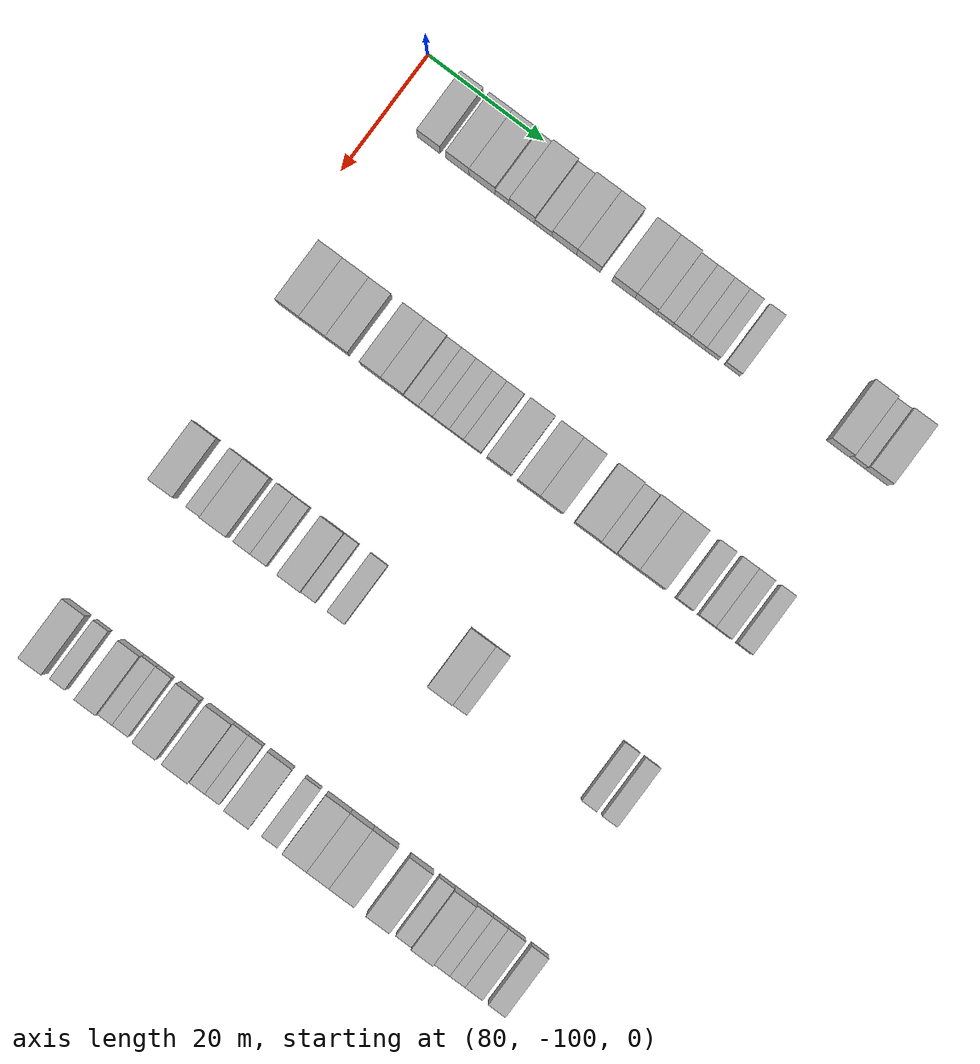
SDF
<sdf version="1.6">
 <world name="default">
  <model name="building_549">
   <static>1</static>
   <pose>85.0000 -92.3695 0 0.000000 0.000000 0.000000</pose>
   <link name="link">
    <pose>0 0 4.50 0 0 0</pose>
    <collision name="collision"><geometry><box><size>10.0000 3.9229 9.0000</size></box></geometry></collision>
    <visual name="visual">
     <cast_shadows>0</cast_shadows>
     <geometry><box><size>10.0000 3.9229 9.0000</size></box></geometry>
     <material>
      <script>
       <uri>model://HANNAS_wall/materials/scripts</uri>
       <uri>model://HANNAS_wall/materials/textures</uri>
       <name>vrc/HANNAS_wall</name>
      </script>
     </material>
    </visual>
   </link>
  </model>
  <model name="building_550">
   <static>1</static>
   <pose>85.0000 -87.4269 0 0.000000 0.000000 0.000000</pose>
   <link name="link">
    <pose>0 0 4.50 0 0 0</pose>
    <collision name="collision"><geometry><box><size>10.0000 3.9623 9.0000</size></box></geometry></collision>
    <visual name="visual">
     <cast_shadows>0</cast_shadows>
     <geometry><box><size>10.0000 3.9623 9.0000</size></box></geometry>
     <material>
      <script>
       <uri>model://HANNAS_wall/materials/scripts</uri>
       <uri>model://HANNAS_wall/materials/textures</uri>
       <name>vrc/HANNAS_wall</name>
      </script>
     </material>
    </visual>
   </link>
  </model>
  <model name="building_551">
   <static>1</static>
   <pose>85.0000 -83.2422 0 0.000000 0.000000 0.000000</pose>
   <link name="link">
    <pose>0 0 4.50 0 0 0</pose>
    <collision name="collision"><geometry><box><size>10.0000 4.4071 9.0000</size></box></geometry></collision>
    <visual name="visual">
     <cast_shadows>0</cast_shadows>
     <geometry><box><size>10.0000 4.4071 9.0000</size></box></geometry>
     <material>
      <script>
       <uri>model://HANNAS_wall/materials/scripts</uri>
       <uri>model://HANNAS_wall/materials/textures</uri>
       <name>vrc/HANNAS_wall</name>
      </script>
     </material>
    </visual>
   </link>
  </model>
  <model name="building_552">
   <static>1</static>
   <pose>85.0000 -79.8215 0 0.000000 0.000000 0.000000</pose>
   <link name="link">
    <pose>0 0 3.00 0 0 0</pose>
    <collision name="collision"><geometry><box><size>10.0000 2.4341 6.0000</size></box></geometry></collision>
    <visual name="visual">
     <cast_shadows>0</cast_shadows>
     <geometry><box><size>10.0000 2.4341 6.0000</size></box></geometry>
     <material>
      <script>
       <uri>model://HANNAS_wall/materials/scripts</uri>
       <uri>model://HANNAS_wall/materials/textures</uri>
       <name>vrc/HANNAS_wall</name>
      </script>
     </material>
    </visual>
   </link>
  </model>
  <model name="building_553">
   <static>1</static>
   <pose>85.0000 -76.4082 0 0.000000 0.000000 0.000000</pose>
   <link name="link">
    <pose>0 0 4.50 0 0 0</pose>
    <collision name="collision"><geometry><box><size>10.0000 4.3925 9.0000</size></box></geometry></collision>
    <visual name="visual">
     <cast_shadows>0</cast_shadows>
     <geometry><box><size>10.0000 4.3925 9.0000</size></box></geometry>
     <material>
      <script>
       <uri>model://HANNAS_wall/materials/scripts</uri>
       <uri>model://HANNAS_wall/materials/textures</uri>
       <name>vrc/HANNAS_wall</name>
      </script>
     </material>
    </visual>
   </link>
  </model>
  <model name="building_554">
   <static>1</static>
   <pose>85.0000 -72.7127 0 0.000000 0.000000 0.000000</pose>
   <link name="link">
    <pose>0 0 3.00 0 0 0</pose>
    <collision name="collision"><geometry><box><size>10.0000 2.9986 6.0000</size></box></geometry></collision>
    <visual name="visual">
     <cast_shadows>0</cast_shadows>
     <geometry><box><size>10.0000 2.9986 6.0000</size></box></geometry>
     <material>
      <script>
       <uri>model://HANNAS_wall/materials/scripts</uri>
       <uri>model://HANNAS_wall/materials/textures</uri>
       <name>vrc/HANNAS_wall</name>
      </script>
     </material>
    </visual>
   </link>
  </model>
  <model name="building_555">
   <static>1</static>
   <pose>85.0000 -69.0909 0 0.000000 0.000000 0.000000</pose>
   <link name="link">
    <pose>0 0 4.50 0 0 0</pose>
    <collision name="collision"><geometry><box><size>10.0000 4.2450 9.0000</size></box></geometry></collision>
    <visual name="visual">
     <cast_shadows>0</cast_shadows>
     <geometry><box><size>10.0000 4.2450 9.0000</size></box></geometry>
     <material>
      <script>
       <uri>model://HANNAS_wall/materials/scripts</uri>
       <uri>model://HANNAS_wall/materials/textures</uri>
       <name>vrc/HANNAS_wall</name>
      </script>
     </material>
    </visual>
   </link>
  </model>
  <model name="building_556">
   <static>1</static>
   <pose>85.0000 -64.9209 0 0.000000 0.000000 0.000000</pose>
   <link name="link">
    <pose>0 0 4.50 0 0 0</pose>
    <collision name="collision"><geometry><box><size>10.0000 4.0949 9.0000</size></box></geometry></collision>
    <visual name="visual">
     <cast_shadows>0</cast_shadows>
     <geometry><box><size>10.0000 4.0949 9.0000</size></box></geometry>
     <material>
      <script>
       <uri>model://HANNAS_wall/materials/scripts</uri>
       <uri>model://HANNAS_wall/materials/textures</uri>
       <name>vrc/HANNAS_wall</name>
      </script>
     </material>
    </visual>
   </link>
  </model>
  <model name="building_557">
   <static>1</static>
   <pose>85.0000 -58.8725 0 0.000000 0.000000 0.000000</pose>
   <link name="link">
    <pose>0 0 4.50 0 0 0</pose>
    <collision name="collision"><geometry><box><size>10.0000 4.0019 9.0000</size></box></geometry></collision>
    <visual name="visual">
     <cast_shadows>0</cast_shadows>
     <geometry><box><size>10.0000 4.0019 9.0000</size></box></geometry>
     <material>
      <script>
       <uri>model://HANNAS_wall/materials/scripts</uri>
       <uri>model://HANNAS_wall/materials/textures</uri>
       <name>vrc/HANNAS_wall</name>
      </script>
     </material>
    </visual>
   </link>
  </model>
  <model name="building_558">
   <static>1</static>
   <pose>85.0000 -55.0321 0 0.000000 0.000000 0.000000</pose>
   <link name="link">
    <pose>0 0 4.50 0 0 0</pose>
    <collision name="collision"><geometry><box><size>10.0000 3.6789 9.0000</size></box></geometry></collision>
    <visual name="visual">
     <cast_shadows>0</cast_shadows>
     <geometry><box><size>10.0000 3.6789 9.0000</size></box></geometry>
     <material>
      <script>
       <uri>model://HANNAS_wall/materials/scripts</uri>
       <uri>model://HANNAS_wall/materials/textures</uri>
       <name>vrc/HANNAS_wall</name>
      </script>
     </material>
    </visual>
   </link>
  </model>
  <model name="building_559">
   <static>1</static>
   <pose>85.0000 -51.8158 0 0.000000 0.000000 0.000000</pose>
   <link name="link">
    <pose>0 0 3.00 0 0 0</pose>
    <collision name="collision"><geometry><box><size>10.0000 2.7536 6.0000</size></box></geometry></collision>
    <visual name="visual">
     <cast_shadows>0</cast_shadows>
     <geometry><box><size>10.0000 2.7536 6.0000</size></box></geometry>
     <material>
      <script>
       <uri>model://HANNAS_wall/materials/scripts</uri>
       <uri>model://HANNAS_wall/materials/textures</uri>
       <name>vrc/HANNAS_wall</name>
      </script>
     </material>
    </visual>
   </link>
  </model>
  <model name="building_560">
   <static>1</static>
   <pose>85.0000 -48.9514 0 0.000000 0.000000 0.000000</pose>
   <link name="link">
    <pose>0 0 3.00 0 0 0</pose>
    <collision name="collision"><geometry><box><size>10.0000 2.9752 6.0000</size></box></geometry></collision>
    <visual name="visual">
     <cast_shadows>0</cast_shadows>
     <geometry><box><size>10.0000 2.9752 6.0000</size></box></geometry>
     <material>
      <script>
       <uri>model://HANNAS_wall/materials/scripts</uri>
       <uri>model://HANNAS_wall/materials/textures</uri>
       <name>vrc/HANNAS_wall</name>
      </script>
     </material>
    </visual>
   </link>
  </model>
  <model name="building_561">
   <static>1</static>
   <pose>85.0000 -46.1761 0 0.000000 0.000000 0.000000</pose>
   <link name="link">
    <pose>0 0 3.00 0 0 0</pose>
    <collision name="collision"><geometry><box><size>10.0000 2.5754 6.0000</size></box></geometry></collision>
    <visual name="visual">
     <cast_shadows>0</cast_shadows>
     <geometry><box><size>10.0000 2.5754 6.0000</size></box></geometry>
     <material>
      <script>
       <uri>model://HANNAS_wall/materials/scripts</uri>
       <uri>model://HANNAS_wall/materials/textures</uri>
       <name>vrc/HANNAS_wall</name>
      </script>
     </material>
    </visual>
   </link>
  </model>
  <model name="building_562">
   <static>1</static>
   <pose>85.0000 -43.6844 0 0.000000 0.000000 0.000000</pose>
   <link name="link">
    <pose>0 0 3.00 0 0 0</pose>
    <collision name="collision"><geometry><box><size>10.0000 2.4079 6.0000</size></box></geometry></collision>
    <visual name="visual">
     <cast_shadows>0</cast_shadows>
     <geometry><box><size>10.0000 2.4079 6.0000</size></box></geometry>
     <material>
      <script>
       <uri>model://HANNAS_wall/materials/scripts</uri>
       <uri>model://HANNAS_wall/materials/textures</uri>
       <name>vrc/HANNAS_wall</name>
      </script>
     </material>
    </visual>
   </link>
  </model>
  <model name="building_563">
   <static>1</static>
   <pose>85.0000 -40.1378 0 0.000000 0.000000 0.000000</pose>
   <link name="link">
    <pose>0 0 3.00 0 0 0</pose>
    <collision name="collision"><geometry><box><size>10.0000 2.6854 6.0000</size></box></geometry></collision>
    <visual name="visual">
     <cast_shadows>0</cast_shadows>
     <geometry><box><size>10.0000 2.6854 6.0000</size></box></geometry>
     <material>
      <script>
       <uri>model://HANNAS_wall/materials/scripts</uri>
       <uri>model://HANNAS_wall/materials/textures</uri>
       <name>vrc/HANNAS_wall</name>
      </script>
     </material>
    </visual>
   </link>
  </model>
  <model name="building_564">
   <static>1</static>
   <pose>85.0000 -21.9432 0 0.000000 0.000000 0.000000</pose>
   <link name="link">
    <pose>0 0 4.50 0 0 0</pose>
    <collision name="collision"><geometry><box><size>10.0000 3.9012 9.0000</size></box></geometry></collision>
    <visual name="visual">
     <cast_shadows>0</cast_shadows>
     <geometry><box><size>10.0000 3.9012 9.0000</size></box></geometry>
     <material>
      <script>
       <uri>model://HANNAS_wall/materials/scripts</uri>
       <uri>model://HANNAS_wall/materials/textures</uri>
       <name>vrc/HANNAS_wall</name>
      </script>
     </material>
    </visual>
   </link>
  </model>
  <model name="building_565">
   <static>1</static>
   <pose>85.0000 -18.6676 0 0.000000 0.000000 0.000000</pose>
   <link name="link">
    <pose>0 0 3.00 0 0 0</pose>
    <collision name="collision"><geometry><box><size>10.0000 2.6501 6.0000</size></box></geometry></collision>
    <visual name="visual">
     <cast_shadows>0</cast_shadows>
     <geometry><box><size>10.0000 2.6501 6.0000</size></box></geometry>
     <material>
      <script>
       <uri>model://HANNAS_wall/materials/scripts</uri>
       <uri>model://HANNAS_wall/materials/textures</uri>
       <name>vrc/HANNAS_wall</name>
      </script>
     </material>
    </visual>
   </link>
  </model>
  <model name="building_566">
   <static>1</static>
   <pose>85.0000 -15.3752 0 0.000000 0.000000 0.000000</pose>
   <link name="link">
    <pose>0 0 4.50 0 0 0</pose>
    <collision name="collision"><geometry><box><size>10.0000 3.9347 9.0000</size></box></geometry></collision>
    <visual name="visual">
     <cast_shadows>0</cast_shadows>
     <geometry><box><size>10.0000 3.9347 9.0000</size></box></geometry>
     <material>
      <script>
       <uri>model://HANNAS_wall/materials/scripts</uri>
       <uri>model://HANNAS_wall/materials/textures</uri>
       <name>vrc/HANNAS_wall</name>
      </script>
     </material>
    </visual>
   </link>
  </model>
  <model name="building_763">
   <static>1</static>
   <pose>115.0000 -94.0664 0 0.000000 0.000000 0.000000</pose>
   <link name="link">
    <pose>0 0 4.50 0 0 0</pose>
    <collision name="collision"><geometry><box><size>10.0000 4.0373 9.0000</size></box></geometry></collision>
    <visual name="visual">
     <cast_shadows>0</cast_shadows>
     <geometry><box><size>10.0000 4.0373 9.0000</size></box></geometry>
     <material>
      <script>
       <uri>model://HANNAS_wall/materials/scripts</uri>
       <uri>model://HANNAS_wall/materials/textures</uri>
       <name>vrc/HANNAS_wall</name>
      </script>
     </material>
    </visual>
   </link>
  </model>
  <model name="building_764">
   <static>1</static>
   <pose>115.0000 -89.8012 0 0.000000 0.000000 0.000000</pose>
   <link name="link">
    <pose>0 0 4.50 0 0 0</pose>
    <collision name="collision"><geometry><box><size>10.0000 4.4929 9.0000</size></box></geometry></collision>
    <visual name="visual">
     <cast_shadows>0</cast_shadows>
     <geometry><box><size>10.0000 4.4929 9.0000</size></box></geometry>
     <material>
      <script>
       <uri>model://HANNAS_wall/materials/scripts</uri>
       <uri>model://HANNAS_wall/materials/textures</uri>
       <name>vrc/HANNAS_wall</name>
      </script>
     </material>
    </visual>
   </link>
  </model>
  <model name="building_765">
   <static>1</static>
   <pose>115.0000 -85.6684 0 0.000000 0.000000 0.000000</pose>
   <link name="link">
    <pose>0 0 4.50 0 0 0</pose>
    <collision name="collision"><geometry><box><size>10.0000 3.7727 9.0000</size></box></geometry></collision>
    <visual name="visual">
     <cast_shadows>0</cast_shadows>
     <geometry><box><size>10.0000 3.7727 9.0000</size></box></geometry>
     <material>
      <script>
       <uri>model://HANNAS_wall/materials/scripts</uri>
       <uri>model://HANNAS_wall/materials/textures</uri>
       <name>vrc/HANNAS_wall</name>
      </script>
     </material>
    </visual>
   </link>
  </model>
  <model name="building_766">
   <static>1</static>
   <pose>115.0000 -79.9655 0 0.000000 0.000000 0.000000</pose>
   <link name="link">
    <pose>0 0 4.50 0 0 0</pose>
    <collision name="collision"><geometry><box><size>10.0000 3.6332 9.0000</size></box></geometry></collision>
    <visual name="visual">
     <cast_shadows>0</cast_shadows>
     <geometry><box><size>10.0000 3.6332 9.0000</size></box></geometry>
     <material>
      <script>
       <uri>model://HANNAS_wall/materials/scripts</uri>
       <uri>model://HANNAS_wall/materials/textures</uri>
       <name>vrc/HANNAS_wall</name>
      </script>
     </material>
    </visual>
   </link>
  </model>
  <model name="building_767">
   <static>1</static>
   <pose>115.0000 -76.2328 0 0.000000 0.000000 0.000000</pose>
   <link name="link">
    <pose>0 0 4.50 0 0 0</pose>
    <collision name="collision"><geometry><box><size>10.0000 3.8322 9.0000</size></box></geometry></collision>
    <visual name="visual">
     <cast_shadows>0</cast_shadows>
     <geometry><box><size>10.0000 3.8322 9.0000</size></box></geometry>
     <material>
      <script>
       <uri>model://HANNAS_wall/materials/scripts</uri>
       <uri>model://HANNAS_wall/materials/textures</uri>
       <name>vrc/HANNAS_wall</name>
      </script>
     </material>
    </visual>
   </link>
  </model>
  <model name="building_768">
   <static>1</static>
   <pose>115.0000 -73.0733 0 0.000000 0.000000 0.000000</pose>
   <link name="link">
    <pose>0 0 3.00 0 0 0</pose>
    <collision name="collision"><geometry><box><size>10.0000 2.4868 6.0000</size></box></geometry></collision>
    <visual name="visual">
     <cast_shadows>0</cast_shadows>
     <geometry><box><size>10.0000 2.4868 6.0000</size></box></geometry>
     <material>
      <script>
       <uri>model://HANNAS_wall/materials/scripts</uri>
       <uri>model://HANNAS_wall/materials/textures</uri>
       <name>vrc/HANNAS_wall</name>
      </script>
     </material>
    </visual>
   </link>
  </model>
  <model name="building_769">
   <static>1</static>
   <pose>115.0000 -70.5914 0 0.000000 0.000000 0.000000</pose>
   <link name="link">
    <pose>0 0 3.00 0 0 0</pose>
    <collision name="collision"><geometry><box><size>10.0000 2.4769 6.0000</size></box></geometry></collision>
    <visual name="visual">
     <cast_shadows>0</cast_shadows>
     <geometry><box><size>10.0000 2.4769 6.0000</size></box></geometry>
     <material>
      <script>
       <uri>model://HANNAS_wall/materials/scripts</uri>
       <uri>model://HANNAS_wall/materials/textures</uri>
       <name>vrc/HANNAS_wall</name>
      </script>
     </material>
    </visual>
   </link>
  </model>
  <model name="building_770">
   <static>1</static>
   <pose>115.0000 -67.9478 0 0.000000 0.000000 0.000000</pose>
   <link name="link">
    <pose>0 0 3.00 0 0 0</pose>
    <collision name="collision"><geometry><box><size>10.0000 2.8102 6.0000</size></box></geometry></collision>
    <visual name="visual">
     <cast_shadows>0</cast_shadows>
     <geometry><box><size>10.0000 2.8102 6.0000</size></box></geometry>
     <material>
      <script>
       <uri>model://HANNAS_wall/materials/scripts</uri>
       <uri>model://HANNAS_wall/materials/textures</uri>
       <name>vrc/HANNAS_wall</name>
      </script>
     </material>
    </visual>
   </link>
  </model>
  <model name="building_771">
   <static>1</static>
   <pose>115.0000 -65.3256 0 0.000000 0.000000 0.000000</pose>
   <link name="link">
    <pose>0 0 3.00 0 0 0</pose>
    <collision name="collision"><geometry><box><size>10.0000 2.4344 6.0000</size></box></geometry></collision>
    <visual name="visual">
     <cast_shadows>0</cast_shadows>
     <geometry><box><size>10.0000 2.4344 6.0000</size></box></geometry>
     <material>
      <script>
       <uri>model://HANNAS_wall/materials/scripts</uri>
       <uri>model://HANNAS_wall/materials/textures</uri>
       <name>vrc/HANNAS_wall</name>
      </script>
     </material>
    </visual>
   </link>
  </model>
  <model name="building_772">
   <static>1</static>
   <pose>115.0000 -62.6103 0 0.000000 0.000000 0.000000</pose>
   <link name="link">
    <pose>0 0 3.00 0 0 0</pose>
    <collision name="collision"><geometry><box><size>10.0000 2.9961 6.0000</size></box></geometry></collision>
    <visual name="visual">
     <cast_shadows>0</cast_shadows>
     <geometry><box><size>10.0000 2.9961 6.0000</size></box></geometry>
     <material>
      <script>
       <uri>model://HANNAS_wall/materials/scripts</uri>
       <uri>model://HANNAS_wall/materials/textures</uri>
       <name>vrc/HANNAS_wall</name>
      </script>
     </material>
    </visual>
   </link>
  </model>
  <model name="building_773">
   <static>1</static>
   <pose>115.0000 -58.0011 0 0.000000 0.000000 0.000000</pose>
   <link name="link">
    <pose>0 0 4.50 0 0 0</pose>
    <collision name="collision"><geometry><box><size>10.0000 4.2223 9.0000</size></box></geometry></collision>
    <visual name="visual">
     <cast_shadows>0</cast_shadows>
     <geometry><box><size>10.0000 4.2223 9.0000</size></box></geometry>
     <material>
      <script>
       <uri>model://HANNAS_wall/materials/scripts</uri>
       <uri>model://HANNAS_wall/materials/textures</uri>
       <name>vrc/HANNAS_wall</name>
      </script>
     </material>
    </visual>
   </link>
  </model>
  <model name="building_774">
   <static>1</static>
   <pose>115.0000 -52.9648 0 0.000000 0.000000 0.000000</pose>
   <link name="link">
    <pose>0 0 4.50 0 0 0</pose>
    <collision name="collision"><geometry><box><size>10.0000 3.8503 9.0000</size></box></geometry></collision>
    <visual name="visual">
     <cast_shadows>0</cast_shadows>
     <geometry><box><size>10.0000 3.8503 9.0000</size></box></geometry>
     <material>
      <script>
       <uri>model://HANNAS_wall/materials/scripts</uri>
       <uri>model://HANNAS_wall/materials/textures</uri>
       <name>vrc/HANNAS_wall</name>
      </script>
     </material>
    </visual>
   </link>
  </model>
  <model name="building_775">
   <static>1</static>
   <pose>115.0000 -49.0856 0 0.000000 0.000000 0.000000</pose>
   <link name="link">
    <pose>0 0 4.50 0 0 0</pose>
    <collision name="collision"><geometry><box><size>10.0000 3.9083 9.0000</size></box></geometry></collision>
    <visual name="visual">
     <cast_shadows>0</cast_shadows>
     <geometry><box><size>10.0000 3.9083 9.0000</size></box></geometry>
     <material>
      <script>
       <uri>model://HANNAS_wall/materials/scripts</uri>
       <uri>model://HANNAS_wall/materials/textures</uri>
       <name>vrc/HANNAS_wall</name>
      </script>
     </material>
    </visual>
   </link>
  </model>
  <model name="building_776">
   <static>1</static>
   <pose>115.0000 -42.9092 0 0.000000 0.000000 0.000000</pose>
   <link name="link">
    <pose>0 0 4.50 0 0 0</pose>
    <collision name="collision"><geometry><box><size>10.0000 4.4445 9.0000</size></box></geometry></collision>
    <visual name="visual">
     <cast_shadows>0</cast_shadows>
     <geometry><box><size>10.0000 4.4445 9.0000</size></box></geometry>
     <material>
      <script>
       <uri>model://HANNAS_wall/materials/scripts</uri>
       <uri>model://HANNAS_wall/materials/textures</uri>
       <name>vrc/HANNAS_wall</name>
      </script>
     </material>
    </visual>
   </link>
  </model>
  <model name="building_777">
   <static>1</static>
   <pose>115.0000 -39.3309 0 0.000000 0.000000 0.000000</pose>
   <link name="link">
    <pose>0 0 3.00 0 0 0</pose>
    <collision name="collision"><geometry><box><size>10.0000 2.7121 6.0000</size></box></geometry></collision>
    <visual name="visual">
     <cast_shadows>0</cast_shadows>
     <geometry><box><size>10.0000 2.7121 6.0000</size></box></geometry>
     <material>
      <script>
       <uri>model://HANNAS_wall/materials/scripts</uri>
       <uri>model://HANNAS_wall/materials/textures</uri>
       <name>vrc/HANNAS_wall</name>
      </script>
     </material>
    </visual>
   </link>
  </model>
  <model name="building_778">
   <static>1</static>
   <pose>115.0000 -36.1022 0 0.000000 0.000000 0.000000</pose>
   <link name="link">
    <pose>0 0 4.50 0 0 0</pose>
    <collision name="collision"><geometry><box><size>10.0000 3.7453 9.0000</size></box></geometry></collision>
    <visual name="visual">
     <cast_shadows>0</cast_shadows>
     <geometry><box><size>10.0000 3.7453 9.0000</size></box></geometry>
     <material>
      <script>
       <uri>model://HANNAS_wall/materials/scripts</uri>
       <uri>model://HANNAS_wall/materials/textures</uri>
       <name>vrc/HANNAS_wall</name>
      </script>
     </material>
    </visual>
   </link>
  </model>
  <model name="building_779">
   <static>1</static>
   <pose>115.0000 -31.9839 0 0.000000 0.000000 0.000000</pose>
   <link name="link">
    <pose>0 0 4.50 0 0 0</pose>
    <collision name="collision"><geometry><box><size>10.0000 4.4913 9.0000</size></box></geometry></collision>
    <visual name="visual">
     <cast_shadows>0</cast_shadows>
     <geometry><box><size>10.0000 4.4913 9.0000</size></box></geometry>
     <material>
      <script>
       <uri>model://HANNAS_wall/materials/scripts</uri>
       <uri>model://HANNAS_wall/materials/textures</uri>
       <name>vrc/HANNAS_wall</name>
      </script>
     </material>
    </visual>
   </link>
  </model>
  <model name="building_780">
   <static>1</static>
   <pose>115.0000 -26.3123 0 0.000000 0.000000 0.000000</pose>
   <link name="link">
    <pose>0 0 3.00 0 0 0</pose>
    <collision name="collision"><geometry><box><size>10.0000 2.8518 6.0000</size></box></geometry></collision>
    <visual name="visual">
     <cast_shadows>0</cast_shadows>
     <geometry><box><size>10.0000 2.8518 6.0000</size></box></geometry>
     <material>
      <script>
       <uri>model://HANNAS_wall/materials/scripts</uri>
       <uri>model://HANNAS_wall/materials/textures</uri>
       <name>vrc/HANNAS_wall</name>
      </script>
     </material>
    </visual>
   </link>
  </model>
  <model name="building_781">
   <static>1</static>
   <pose>115.0000 -22.4826 0 0.000000 0.000000 0.000000</pose>
   <link name="link">
    <pose>0 0 3.00 0 0 0</pose>
    <collision name="collision"><geometry><box><size>10.0000 2.8076 6.0000</size></box></geometry></collision>
    <visual name="visual">
     <cast_shadows>0</cast_shadows>
     <geometry><box><size>10.0000 2.8076 6.0000</size></box></geometry>
     <material>
      <script>
       <uri>model://HANNAS_wall/materials/scripts</uri>
       <uri>model://HANNAS_wall/materials/textures</uri>
       <name>vrc/HANNAS_wall</name>
      </script>
     </material>
    </visual>
   </link>
  </model>
  <model name="building_782">
   <static>1</static>
   <pose>115.0000 -19.6987 0 0.000000 0.000000 0.000000</pose>
   <link name="link">
    <pose>0 0 3.00 0 0 0</pose>
    <collision name="collision"><geometry><box><size>10.0000 2.7603 6.0000</size></box></geometry></collision>
    <visual name="visual">
     <cast_shadows>0</cast_shadows>
     <geometry><box><size>10.0000 2.7603 6.0000</size></box></geometry>
     <material>
      <script>
       <uri>model://HANNAS_wall/materials/scripts</uri>
       <uri>model://HANNAS_wall/materials/textures</uri>
       <name>vrc/HANNAS_wall</name>
      </script>
     </material>
    </visual>
   </link>
  </model>
  <model name="building_783">
   <static>1</static>
   <pose>115.0000 -16.0367 0 0.000000 0.000000 0.000000</pose>
   <link name="link">
    <pose>0 0 3.00 0 0 0</pose>
    <collision name="collision"><geometry><box><size>10.0000 2.5637 6.0000</size></box></geometry></collision>
    <visual name="visual">
     <cast_shadows>0</cast_shadows>
     <geometry><box><size>10.0000 2.5637 6.0000</size></box></geometry>
     <material>
      <script>
       <uri>model://HANNAS_wall/materials/scripts</uri>
       <uri>model://HANNAS_wall/materials/textures</uri>
       <name>vrc/HANNAS_wall</name>
      </script>
     </material>
    </visual>
   </link>
  </model>
  <model name="building_987">
   <static>1</static>
   <pose>145.0000 -93.2163 0 0.000000 0.000000 0.000000</pose>
   <link name="link">
    <pose>0 0 4.50 0 0 0</pose>
    <collision name="collision"><geometry><box><size>10.0000 4.1732 9.0000</size></box></geometry></collision>
    <visual name="visual">
     <cast_shadows>0</cast_shadows>
     <geometry><box><size>10.0000 4.1732 9.0000</size></box></geometry>
     <material>
      <script>
       <uri>model://HANNAS_wall/materials/scripts</uri>
       <uri>model://HANNAS_wall/materials/textures</uri>
       <name>vrc/HANNAS_wall</name>
      </script>
     </material>
    </visual>
   </link>
  </model>
  <model name="building_988">
   <static>1</static>
   <pose>145.0000 -87.8620 0 0.000000 0.000000 0.000000</pose>
   <link name="link">
    <pose>0 0 3.00 0 0 0</pose>
    <collision name="collision"><geometry><box><size>10.0000 2.5354 6.0000</size></box></geometry></collision>
    <visual name="visual">
     <cast_shadows>0</cast_shadows>
     <geometry><box><size>10.0000 2.5354 6.0000</size></box></geometry>
     <material>
      <script>
       <uri>model://HANNAS_wall/materials/scripts</uri>
       <uri>model://HANNAS_wall/materials/textures</uri>
       <name>vrc/HANNAS_wall</name>
      </script>
     </material>
    </visual>
   </link>
  </model>
  <model name="building_989">
   <static>1</static>
   <pose>145.0000 -84.3568 0 0.000000 0.000000 0.000000</pose>
   <link name="link">
    <pose>0 0 4.50 0 0 0</pose>
    <collision name="collision"><geometry><box><size>10.0000 4.4751 9.0000</size></box></geometry></collision>
    <visual name="visual">
     <cast_shadows>0</cast_shadows>
     <geometry><box><size>10.0000 4.4751 9.0000</size></box></geometry>
     <material>
      <script>
       <uri>model://HANNAS_wall/materials/scripts</uri>
       <uri>model://HANNAS_wall/materials/textures</uri>
       <name>vrc/HANNAS_wall</name>
      </script>
     </material>
    </visual>
   </link>
  </model>
  <model name="building_990">
   <static>1</static>
   <pose>145.0000 -79.6704 0 0.000000 0.000000 0.000000</pose>
   <link name="link">
    <pose>0 0 3.00 0 0 0</pose>
    <collision name="collision"><geometry><box><size>10.0000 2.8977 6.0000</size></box></geometry></collision>
    <visual name="visual">
     <cast_shadows>0</cast_shadows>
     <geometry><box><size>10.0000 2.8977 6.0000</size></box></geometry>
     <material>
      <script>
       <uri>model://HANNAS_wall/materials/scripts</uri>
       <uri>model://HANNAS_wall/materials/textures</uri>
       <name>vrc/HANNAS_wall</name>
      </script>
     </material>
    </visual>
   </link>
  </model>
  <model name="building_991">
   <static>1</static>
   <pose>145.0000 -76.8493 0 0.000000 0.000000 0.000000</pose>
   <link name="link">
    <pose>0 0 3.00 0 0 0</pose>
    <collision name="collision"><geometry><box><size>10.0000 2.7444 6.0000</size></box></geometry></collision>
    <visual name="visual">
     <cast_shadows>0</cast_shadows>
     <geometry><box><size>10.0000 2.7444 6.0000</size></box></geometry>
     <material>
      <script>
       <uri>model://HANNAS_wall/materials/scripts</uri>
       <uri>model://HANNAS_wall/materials/textures</uri>
       <name>vrc/HANNAS_wall</name>
      </script>
     </material>
    </visual>
   </link>
  </model>
  <model name="building_992">
   <static>1</static>
   <pose>145.0000 -71.4989 0 0.000000 0.000000 0.000000</pose>
   <link name="link">
    <pose>0 0 4.50 0 0 0</pose>
    <collision name="collision"><geometry><box><size>10.0000 3.9564 9.0000</size></box></geometry></collision>
    <visual name="visual">
     <cast_shadows>0</cast_shadows>
     <geometry><box><size>10.0000 3.9564 9.0000</size></box></geometry>
     <material>
      <script>
       <uri>model://HANNAS_wall/materials/scripts</uri>
       <uri>model://HANNAS_wall/materials/textures</uri>
       <name>vrc/HANNAS_wall</name>
      </script>
     </material>
    </visual>
   </link>
  </model>
  <model name="building_993">
   <static>1</static>
   <pose>145.0000 -68.3089 0 0.000000 0.000000 0.000000</pose>
   <link name="link">
    <pose>0 0 3.00 0 0 0</pose>
    <collision name="collision"><geometry><box><size>10.0000 2.4236 6.0000</size></box></geometry></collision>
    <visual name="visual">
     <cast_shadows>0</cast_shadows>
     <geometry><box><size>10.0000 2.4236 6.0000</size></box></geometry>
     <material>
      <script>
       <uri>model://HANNAS_wall/materials/scripts</uri>
       <uri>model://HANNAS_wall/materials/textures</uri>
       <name>vrc/HANNAS_wall</name>
      </script>
     </material>
    </visual>
   </link>
  </model>
  <model name="building_994">
   <static>1</static>
   <pose>145.0000 -63.6092 0 0.000000 0.000000 0.000000</pose>
   <link name="link">
    <pose>0 0 3.00 0 0 0</pose>
    <collision name="collision"><geometry><box><size>10.0000 2.9759 6.0000</size></box></geometry></collision>
    <visual name="visual">
     <cast_shadows>0</cast_shadows>
     <geometry><box><size>10.0000 2.9759 6.0000</size></box></geometry>
     <material>
      <script>
       <uri>model://HANNAS_wall/materials/scripts</uri>
       <uri>model://HANNAS_wall/materials/textures</uri>
       <name>vrc/HANNAS_wall</name>
      </script>
     </material>
    </visual>
   </link>
  </model>
  <model name="building_995">
   <static>1</static>
   <pose>145.0000 -45.7806 0 0.000000 0.000000 0.000000</pose>
   <link name="link">
    <pose>0 0 4.50 0 0 0</pose>
    <collision name="collision"><geometry><box><size>10.0000 4.2271 9.0000</size></box></geometry></collision>
    <visual name="visual">
     <cast_shadows>0</cast_shadows>
     <geometry><box><size>10.0000 4.2271 9.0000</size></box></geometry>
     <material>
      <script>
       <uri>model://HANNAS_wall/materials/scripts</uri>
       <uri>model://HANNAS_wall/materials/textures</uri>
       <name>vrc/HANNAS_wall</name>
      </script>
     </material>
    </visual>
   </link>
  </model>
  <model name="building_996">
   <static>1</static>
   <pose>145.0000 -42.4492 0 0.000000 0.000000 0.000000</pose>
   <link name="link">
    <pose>0 0 3.00 0 0 0</pose>
    <collision name="collision"><geometry><box><size>10.0000 2.4359 6.0000</size></box></geometry></collision>
    <visual name="visual">
     <cast_shadows>0</cast_shadows>
     <geometry><box><size>10.0000 2.4359 6.0000</size></box></geometry>
     <material>
      <script>
       <uri>model://HANNAS_wall/materials/scripts</uri>
       <uri>model://HANNAS_wall/materials/textures</uri>
       <name>vrc/HANNAS_wall</name>
      </script>
     </material>
    </visual>
   </link>
  </model>
  <model name="building_997">
   <static>1</static>
   <pose>145.0000 -20.4070 0 0.000000 0.000000 0.000000</pose>
   <link name="link">
    <pose>0 0 3.00 0 0 0</pose>
    <collision name="collision"><geometry><box><size>10.0000 2.5495 6.0000</size></box></geometry></collision>
    <visual name="visual">
     <cast_shadows>0</cast_shadows>
     <geometry><box><size>10.0000 2.5495 6.0000</size></box></geometry>
     <material>
      <script>
       <uri>model://HANNAS_wall/materials/scripts</uri>
       <uri>model://HANNAS_wall/materials/textures</uri>
       <name>vrc/HANNAS_wall</name>
      </script>
     </material>
    </visual>
   </link>
  </model>
  <model name="building_998">
   <static>1</static>
   <pose>145.0000 -16.8567 0 0.000000 0.000000 0.000000</pose>
   <link name="link">
    <pose>0 0 3.00 0 0 0</pose>
    <collision name="collision"><geometry><box><size>10.0000 2.5511 6.0000</size></box></geometry></collision>
    <visual name="visual">
     <cast_shadows>0</cast_shadows>
     <geometry><box><size>10.0000 2.5511 6.0000</size></box></geometry>
     <material>
      <script>
       <uri>model://HANNAS_wall/materials/scripts</uri>
       <uri>model://HANNAS_wall/materials/textures</uri>
       <name>vrc/HANNAS_wall</name>
      </script>
     </material>
    </visual>
   </link>
  </model>
  <model name="building_1215">
   <static>1</static>
   <pose>175.0000 -93.0045 0 0.000000 0.000000 0.000000</pose>
   <link name="link">
    <pose>0 0 4.50 0 0 0</pose>
    <collision name="collision"><geometry><box><size>10.0000 3.9108 9.0000</size></box></geometry></collision>
    <visual name="visual">
     <cast_shadows>0</cast_shadows>
     <geometry><box><size>10.0000 3.9108 9.0000</size></box></geometry>
     <material>
      <script>
       <uri>model://HANNAS_wall/materials/scripts</uri>
       <uri>model://HANNAS_wall/materials/textures</uri>
       <name>vrc/HANNAS_wall</name>
      </script>
     </material>
    </visual>
   </link>
  </model>
  <model name="building_1216">
   <static>1</static>
   <pose>175.0000 -88.7581 0 0.000000 0.000000 0.000000</pose>
   <link name="link">
    <pose>0 0 3.00 0 0 0</pose>
    <collision name="collision"><geometry><box><size>10.0000 2.5820 6.0000</size></box></geometry></collision>
    <visual name="visual">
     <cast_shadows>0</cast_shadows>
     <geometry><box><size>10.0000 2.5820 6.0000</size></box></geometry>
     <material>
      <script>
       <uri>model://HANNAS_wall/materials/scripts</uri>
       <uri>model://HANNAS_wall/materials/textures</uri>
       <name>vrc/HANNAS_wall</name>
      </script>
     </material>
    </visual>
   </link>
  </model>
  <model name="building_1217">
   <static>1</static>
   <pose>175.0000 -83.6529 0 0.000000 0.000000 0.000000</pose>
   <link name="link">
    <pose>0 0 4.50 0 0 0</pose>
    <collision name="collision"><geometry><box><size>10.0000 3.6285 9.0000</size></box></geometry></collision>
    <visual name="visual">
     <cast_shadows>0</cast_shadows>
     <geometry><box><size>10.0000 3.6285 9.0000</size></box></geometry>
     <material>
      <script>
       <uri>model://HANNAS_wall/materials/scripts</uri>
       <uri>model://HANNAS_wall/materials/textures</uri>
       <name>vrc/HANNAS_wall</name>
      </script>
     </material>
    </visual>
   </link>
  </model>
  <model name="building_1218">
   <static>1</static>
   <pose>175.0000 -80.6193 0 0.000000 0.000000 0.000000</pose>
   <link name="link">
    <pose>0 0 3.00 0 0 0</pose>
    <collision name="collision"><geometry><box><size>10.0000 2.4386 6.0000</size></box></geometry></collision>
    <visual name="visual">
     <cast_shadows>0</cast_shadows>
     <geometry><box><size>10.0000 2.4386 6.0000</size></box></geometry>
     <material>
      <script>
       <uri>model://HANNAS_wall/materials/scripts</uri>
       <uri>model://HANNAS_wall/materials/textures</uri>
       <name>vrc/HANNAS_wall</name>
      </script>
     </material>
    </visual>
   </link>
  </model>
  <model name="building_1219">
   <static>1</static>
   <pose>175.0000 -78.0466 0 0.000000 0.000000 0.000000</pose>
   <link name="link">
    <pose>0 0 3.00 0 0 0</pose>
    <collision name="collision"><geometry><box><size>10.0000 2.7068 6.0000</size></box></geometry></collision>
    <visual name="visual">
     <cast_shadows>0</cast_shadows>
     <geometry><box><size>10.0000 2.7068 6.0000</size></box></geometry>
     <material>
      <script>
       <uri>model://HANNAS_wall/materials/scripts</uri>
       <uri>model://HANNAS_wall/materials/textures</uri>
       <name>vrc/HANNAS_wall</name>
      </script>
     </material>
    </visual>
   </link>
  </model>
  <model name="building_1220">
   <static>1</static>
   <pose>175.0000 -73.6864 0 0.000000 0.000000 0.000000</pose>
   <link name="link">
    <pose>0 0 4.50 0 0 0</pose>
    <collision name="collision"><geometry><box><size>10.0000 4.0135 9.0000</size></box></geometry></collision>
    <visual name="visual">
     <cast_shadows>0</cast_shadows>
     <geometry><box><size>10.0000 4.0135 9.0000</size></box></geometry>
     <material>
      <script>
       <uri>model://HANNAS_wall/materials/scripts</uri>
       <uri>model://HANNAS_wall/materials/textures</uri>
       <name>vrc/HANNAS_wall</name>
      </script>
     </material>
    </visual>
   </link>
  </model>
  <model name="building_1221">
   <static>1</static>
   <pose>175.0000 -68.4607 0 0.000000 0.000000 0.000000</pose>
   <link name="link">
    <pose>0 0 4.50 0 0 0</pose>
    <collision name="collision"><geometry><box><size>10.0000 4.4380 9.0000</size></box></geometry></collision>
    <visual name="visual">
     <cast_shadows>0</cast_shadows>
     <geometry><box><size>10.0000 4.4380 9.0000</size></box></geometry>
     <material>
      <script>
       <uri>model://HANNAS_wall/materials/scripts</uri>
       <uri>model://HANNAS_wall/materials/textures</uri>
       <name>vrc/HANNAS_wall</name>
      </script>
     </material>
    </visual>
   </link>
  </model>
  <model name="building_1222">
   <static>1</static>
   <pose>175.0000 -64.9282 0 0.000000 0.000000 0.000000</pose>
   <link name="link">
    <pose>0 0 3.00 0 0 0</pose>
    <collision name="collision"><geometry><box><size>10.0000 2.6269 6.0000</size></box></geometry></collision>
    <visual name="visual">
     <cast_shadows>0</cast_shadows>
     <geometry><box><size>10.0000 2.6269 6.0000</size></box></geometry>
     <material>
      <script>
       <uri>model://HANNAS_wall/materials/scripts</uri>
       <uri>model://HANNAS_wall/materials/textures</uri>
       <name>vrc/HANNAS_wall</name>
      </script>
     </material>
    </visual>
   </link>
  </model>
  <model name="building_1223">
   <static>1</static>
   <pose>175.0000 -62.3735 0 0.000000 0.000000 0.000000</pose>
   <link name="link">
    <pose>0 0 3.00 0 0 0</pose>
    <collision name="collision"><geometry><box><size>10.0000 2.4826 6.0000</size></box></geometry></collision>
    <visual name="visual">
     <cast_shadows>0</cast_shadows>
     <geometry><box><size>10.0000 2.4826 6.0000</size></box></geometry>
     <material>
      <script>
       <uri>model://HANNAS_wall/materials/scripts</uri>
       <uri>model://HANNAS_wall/materials/textures</uri>
       <name>vrc/HANNAS_wall</name>
      </script>
     </material>
    </visual>
   </link>
  </model>
  <model name="building_1224">
   <static>1</static>
   <pose>175.0000 -58.0399 0 0.000000 0.000000 0.000000</pose>
   <link name="link">
    <pose>0 0 4.50 0 0 0</pose>
    <collision name="collision"><geometry><box><size>10.0000 4.1845 9.0000</size></box></geometry></collision>
    <visual name="visual">
     <cast_shadows>0</cast_shadows>
     <geometry><box><size>10.0000 4.1845 9.0000</size></box></geometry>
     <material>
      <script>
       <uri>model://HANNAS_wall/materials/scripts</uri>
       <uri>model://HANNAS_wall/materials/textures</uri>
       <name>vrc/HANNAS_wall</name>
      </script>
     </material>
    </visual>
   </link>
  </model>
  <model name="building_1225">
   <static>1</static>
   <pose>175.0000 -52.5969 0 0.000000 0.000000 0.000000</pose>
   <link name="link">
    <pose>0 0 3.00 0 0 0</pose>
    <collision name="collision"><geometry><box><size>10.0000 2.7016 6.0000</size></box></geometry></collision>
    <visual name="visual">
     <cast_shadows>0</cast_shadows>
     <geometry><box><size>10.0000 2.7016 6.0000</size></box></geometry>
     <material>
      <script>
       <uri>model://HANNAS_wall/materials/scripts</uri>
       <uri>model://HANNAS_wall/materials/textures</uri>
       <name>vrc/HANNAS_wall</name>
      </script>
     </material>
    </visual>
   </link>
  </model>
  <model name="building_1226">
   <static>1</static>
   <pose>175.0000 -48.1618 0 0.000000 0.000000 0.000000</pose>
   <link name="link">
    <pose>0 0 4.50 0 0 0</pose>
    <collision name="collision"><geometry><box><size>10.0000 4.1686 9.0000</size></box></geometry></collision>
    <visual name="visual">
     <cast_shadows>0</cast_shadows>
     <geometry><box><size>10.0000 4.1686 9.0000</size></box></geometry>
     <material>
      <script>
       <uri>model://HANNAS_wall/materials/scripts</uri>
       <uri>model://HANNAS_wall/materials/textures</uri>
       <name>vrc/HANNAS_wall</name>
      </script>
     </material>
    </visual>
   </link>
  </model>
  <model name="building_1227">
   <static>1</static>
   <pose>175.0000 -44.1805 0 0.000000 0.000000 0.000000</pose>
   <link name="link">
    <pose>0 0 4.50 0 0 0</pose>
    <collision name="collision"><geometry><box><size>10.0000 3.7941 9.0000</size></box></geometry></collision>
    <visual name="visual">
     <cast_shadows>0</cast_shadows>
     <geometry><box><size>10.0000 3.7941 9.0000</size></box></geometry>
     <material>
      <script>
       <uri>model://HANNAS_wall/materials/scripts</uri>
       <uri>model://HANNAS_wall/materials/textures</uri>
       <name>vrc/HANNAS_wall</name>
      </script>
     </material>
    </visual>
   </link>
  </model>
  <model name="building_1228">
   <static>1</static>
   <pose>175.0000 -40.1559 0 0.000000 0.000000 0.000000</pose>
   <link name="link">
    <pose>0 0 4.50 0 0 0</pose>
    <collision name="collision"><geometry><box><size>10.0000 4.2550 9.0000</size></box></geometry></collision>
    <visual name="visual">
     <cast_shadows>0</cast_shadows>
     <geometry><box><size>10.0000 4.2550 9.0000</size></box></geometry>
     <material>
      <script>
       <uri>model://HANNAS_wall/materials/scripts</uri>
       <uri>model://HANNAS_wall/materials/textures</uri>
       <name>vrc/HANNAS_wall</name>
      </script>
     </material>
    </visual>
   </link>
  </model>
  <model name="building_1229">
   <static>1</static>
   <pose>175.0000 -34.0469 0 0.000000 0.000000 0.000000</pose>
   <link name="link">
    <pose>0 0 4.50 0 0 0</pose>
    <collision name="collision"><geometry><box><size>10.0000 3.9632 9.0000</size></box></geometry></collision>
    <visual name="visual">
     <cast_shadows>0</cast_shadows>
     <geometry><box><size>10.0000 3.9632 9.0000</size></box></geometry>
     <material>
      <script>
       <uri>model://HANNAS_wall/materials/scripts</uri>
       <uri>model://HANNAS_wall/materials/textures</uri>
       <name>vrc/HANNAS_wall</name>
      </script>
     </material>
    </visual>
   </link>
  </model>
  <model name="building_1230">
   <static>1</static>
   <pose>175.0000 -29.7343 0 0.000000 0.000000 0.000000</pose>
   <link name="link">
    <pose>0 0 3.00 0 0 0</pose>
    <collision name="collision"><geometry><box><size>10.0000 2.6620 6.0000</size></box></geometry></collision>
    <visual name="visual">
     <cast_shadows>0</cast_shadows>
     <geometry><box><size>10.0000 2.6620 6.0000</size></box></geometry>
     <material>
      <script>
       <uri>model://HANNAS_wall/materials/scripts</uri>
       <uri>model://HANNAS_wall/materials/textures</uri>
       <name>vrc/HANNAS_wall</name>
      </script>
     </material>
    </visual>
   </link>
  </model>
  <model name="building_1231">
   <static>1</static>
   <pose>175.0000 -26.5545 0 0.000000 0.000000 0.000000</pose>
   <link name="link">
    <pose>0 0 4.50 0 0 0</pose>
    <collision name="collision"><geometry><box><size>10.0000 3.6975 9.0000</size></box></geometry></collision>
    <visual name="visual">
     <cast_shadows>0</cast_shadows>
     <geometry><box><size>10.0000 3.6975 9.0000</size></box></geometry>
     <material>
      <script>
       <uri>model://HANNAS_wall/materials/scripts</uri>
       <uri>model://HANNAS_wall/materials/textures</uri>
       <name>vrc/HANNAS_wall</name>
      </script>
     </material>
    </visual>
   </link>
  </model>
  <model name="building_1232">
   <static>1</static>
   <pose>175.0000 -23.2869 0 0.000000 0.000000 0.000000</pose>
   <link name="link">
    <pose>0 0 3.00 0 0 0</pose>
    <collision name="collision"><geometry><box><size>10.0000 2.8377 6.0000</size></box></geometry></collision>
    <visual name="visual">
     <cast_shadows>0</cast_shadows>
     <geometry><box><size>10.0000 2.8377 6.0000</size></box></geometry>
     <material>
      <script>
       <uri>model://HANNAS_wall/materials/scripts</uri>
       <uri>model://HANNAS_wall/materials/textures</uri>
       <name>vrc/HANNAS_wall</name>
      </script>
     </material>
    </visual>
   </link>
  </model>
  <model name="building_1233">
   <static>1</static>
   <pose>175.0000 -20.5677 0 0.000000 0.000000 0.000000</pose>
   <link name="link">
    <pose>0 0 3.00 0 0 0</pose>
    <collision name="collision"><geometry><box><size>10.0000 2.6007 6.0000</size></box></geometry></collision>
    <visual name="visual">
     <cast_shadows>0</cast_shadows>
     <geometry><box><size>10.0000 2.6007 6.0000</size></box></geometry>
     <material>
      <script>
       <uri>model://HANNAS_wall/materials/scripts</uri>
       <uri>model://HANNAS_wall/materials/textures</uri>
       <name>vrc/HANNAS_wall</name>
      </script>
     </material>
    </visual>
   </link>
  </model>
  <model name="building_1234">
   <static>1</static>
   <pose>175.0000 -17.7867 0 0.000000 0.000000 0.000000</pose>
   <link name="link">
    <pose>0 0 3.00 0 0 0</pose>
    <collision name="collision"><geometry><box><size>10.0000 2.9612 6.0000</size></box></geometry></collision>
    <visual name="visual">
     <cast_shadows>0</cast_shadows>
     <geometry><box><size>10.0000 2.9612 6.0000</size></box></geometry>
     <material>
      <script>
       <uri>model://HANNAS_wall/materials/scripts</uri>
       <uri>model://HANNAS_wall/materials/textures</uri>
       <name>vrc/HANNAS_wall</name>
      </script>
     </material>
    </visual>
   </link>
  </model>
  <model name="building_1235">
   <static>1</static>
   <pose>175.0000 -13.8526 0 0.000000 0.000000 0.000000</pose>
   <link name="link">
    <pose>0 0 3.00 0 0 0</pose>
    <collision name="collision"><geometry><box><size>10.0000 2.9070 6.0000</size></box></geometry></collision>
    <visual name="visual">
     <cast_shadows>0</cast_shadows>
     <geometry><box><size>10.0000 2.9070 6.0000</size></box></geometry>
     <material>
      <script>
       <uri>model://HANNAS_wall/materials/scripts</uri>
       <uri>model://HANNAS_wall/materials/textures</uri>
       <name>vrc/HANNAS_wall</name>
      </script>
     </material>
    </visual>
   </link>
  </model>
 </world>
</sdf>
